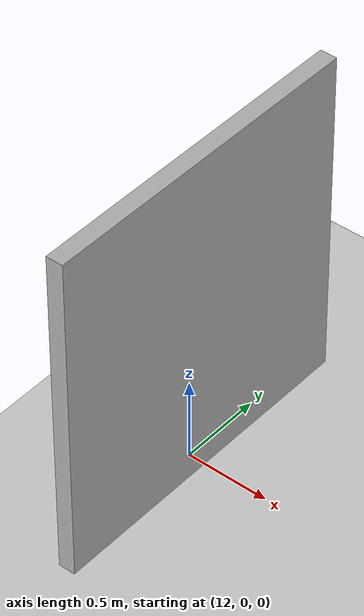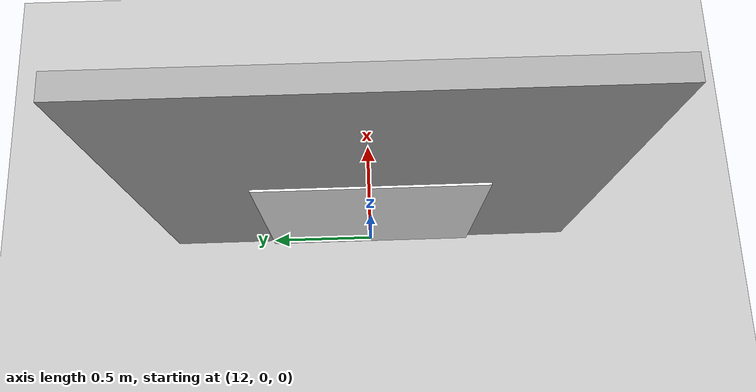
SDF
<?xml version="1.0" ?>
<sdf version="1.6">
  <world name="warehouse_aruco">
    <physics name="fast_physics" type="ignored">
      <max_step_size>0.005</max_step_size>
      <real_time_factor>2.0</real_time_factor>
    </physics>
    <plugin
      filename="gz-sim-physics-system"
      name="gz::sim::systems::Physics">
    </plugin>
    <plugin
      filename="gz-sim-user-commands-system"
      name="gz::sim::systems::UserCommands">
    </plugin>
    <plugin
      filename="gz-sim-scene-broadcaster-system"
      name="gz::sim::systems::SceneBroadcaster">
    </plugin>

    <light type="directional" name="sun">
      <cast_shadows>true</cast_shadows>
      <pose>0 0 10 0 0 0</pose>
      <diffuse>0.8 0.8 0.8 1</diffuse>
      <specular>0.2 0.2 0.2 1</specular>
      <attenuation>
        <range>1000</range>
        <constant>0.9</constant>
        <linear>0.01</linear>
        <quadratic>0.001</quadratic>
      </attenuation>
      <direction>-0.5 0.1 -0.9</direction>
    </light>

    <model name="ground_plane">
      <static>true</static>
      <link name="link">
        <collision name="collision">
          <geometry>
            <plane>
              <normal>0 0 1</normal>
              <size>100 100</size>
            </plane>
          </geometry>
        </collision>
        <visual name="visual">
          <geometry>
            <plane>
              <normal>0 0 1</normal>
              <size>100 100</size>
            </plane>
          </geometry>
          <material>
            <ambient>0.8 0.8 0.8 1</ambient>
            <diffuse>0.8 0.8 0.8 1</diffuse>
            <specular>0.8 0.8 0.8 1</specular>
          </material>
        </visual>
      </link>
    </model>

    <!-- ArUco Marker ID 0 -->
    <include>
      <uri>model://aruco_marker</uri>
      <name>aruco_marker_0</name>
      <pose>11.99 0.0 0.5 0 -1.57 0</pose> <!-- Slightly in front of wall, facing robot -->
    </include>

    <!-- Wall for ArUco -->
    <model name="docking_wall">
      <static>true</static>
      <pose>12.05 0 1.0 0 0 0</pose>
      <link name="link">
        <collision name="collision">
          <geometry>
            <box>
              <size>0.1 2.0 2.0</size>
            </box>
          </geometry>
        </collision>
        <visual name="visual">
          <geometry>
            <box>
              <size>0.1 2.0 2.0</size>
            </box>
          </geometry>
          <material>
            <ambient>0.7 0.7 0.7 1</ambient>
            <diffuse>0.7 0.7 0.7 1</diffuse>
          </material>
        </visual>
      </link>
    </model>

  </world>
</sdf>

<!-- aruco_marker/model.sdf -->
<sdf version="1.6">
  <model name="aruco_marker">
    <static>true</static>
    <link name="link">
      <visual name="visual">
        <geometry>
          <box>
            <size>1.0 1.0 0.01</size>
          </box>
        </geometry>
        <material>
          <ambient>1 1 1 1</ambient>
          <diffuse>1 1 1 1</diffuse>
          <specular>0 0 0 1</specular>
          <pbr>
            <metal>
              <albedo_map>file:///home/eugegeuge/Documents/autonomous_forklift/src/autonomous_forklift/models/aruco_marker/materials/textures/aruco_texture_id26.png</albedo_map>
              <roughness>0.6</roughness>
              <metalness>0.1</metalness>
            </metal>
          </pbr>
        </material>
      </visual>
      <collision name="collision">
        <geometry>
          <box>
            <size>1.0 1.0 0.01</size>
          </box>
        </geometry>
      </collision>
    </link>
  </model>
</sdf>
